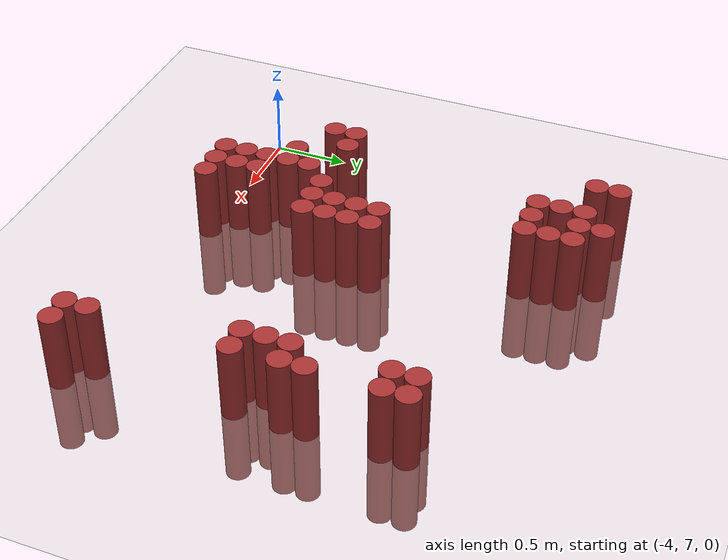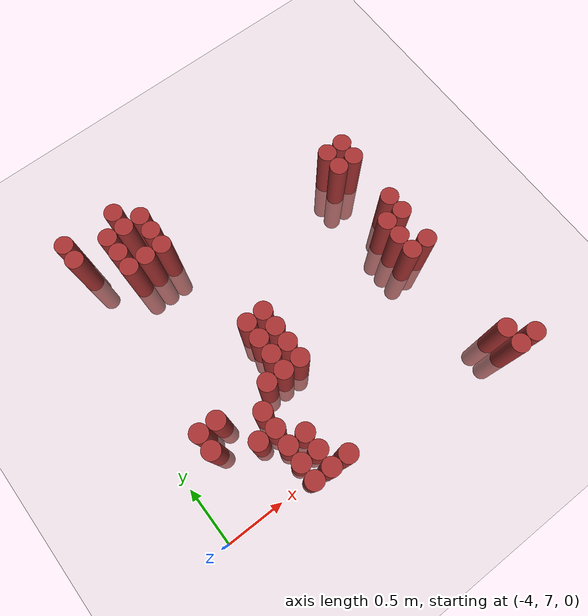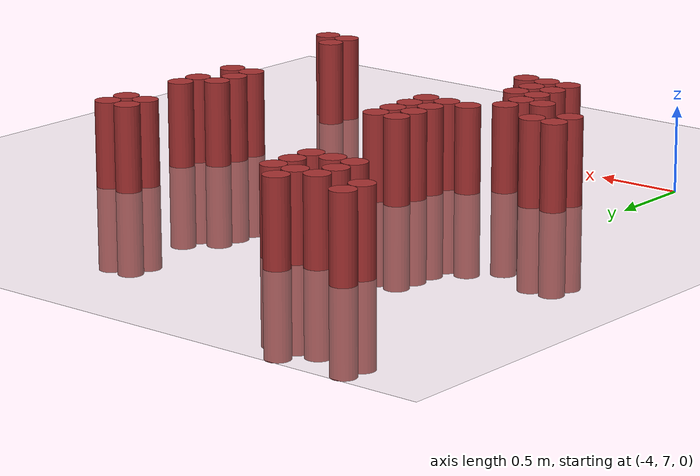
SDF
<sdf version="1.6">
 <world name="world_13">
  <model name="ground_plane">
   <static>1</static>
   <link name="link">
    <collision name="collision">
     <geometry><plane><normal>0 0 1</normal><size>100 100</size></plane></geometry>
     <surface><friction><ode><mu>100</mu><mu2>50</mu2></ode></friction></surface>
    </collision>
    <visual name="visual">
     <cast_shadows>0</cast_shadows>
     <geometry><plane><normal>0 0 1</normal><size>100 100</size></plane></geometry>
     <material>
      <script><uri>file://media/materials/scripts/gazebo.material</uri><name>Gazebo/Grey</name></script>
     </material>
    </visual>
   </link>
  </model>
  <model name="unit_cylinder_160">
   <static>1</static>
   <pose>-3.675000 7.575000 0.000000 0.000000 0.000000 0.000000</pose>
   <link name="link">
    <inertial>
     <mass>1</mass>
     <inertia><ixx>0.145833</ixx><ixy>0</ixy><ixz>0</ixz><iyy>0.145833</iyy><iyz>0</iyz><izz>0.125</izz></inertia>
    </inertial>
    <collision name="collision">
     <geometry><cylinder><radius>0.075000</radius><length>1</length></cylinder></geometry>
    </collision>
    <visual name="visual">
     <geometry><cylinder><radius>0.075000</radius><length>1</length></cylinder></geometry>
     <material>
      <ambient>0.648000 0.192000 0.192000 1</ambient>
      <diffuse>0.648000 0.192000 0.192000 1</diffuse>
     </material>
     <material>
      <script><name>Gazebo/Grey</name><uri>file://media/materials/scripts/gazebo.material</uri></script>
     </material>
    </visual>
   </link>
  </model>
  <model name="unit_cylinder_161">
   <static>1</static>
   <pose>-3.675000 7.725000 0.000000 0.000000 0.000000 0.000000</pose>
   <link name="link">
    <inertial>
     <mass>1</mass>
     <inertia><ixx>0.145833</ixx><ixy>0</ixy><ixz>0</ixz><iyy>0.145833</iyy><iyz>0</iyz><izz>0.125</izz></inertia>
    </inertial>
    <collision name="collision">
     <geometry><cylinder><radius>0.075000</radius><length>1</length></cylinder></geometry>
    </collision>
    <visual name="visual">
     <geometry><cylinder><radius>0.075000</radius><length>1</length></cylinder></geometry>
     <material>
      <ambient>0.648000 0.192000 0.192000 1</ambient>
      <diffuse>0.648000 0.192000 0.192000 1</diffuse>
     </material>
     <material>
      <script><name>Gazebo/Grey</name><uri>file://media/materials/scripts/gazebo.material</uri></script>
     </material>
    </visual>
   </link>
  </model>
  <model name="unit_cylinder_162">
   <static>1</static>
   <pose>-3.675000 9.375000 0.000000 0.000000 0.000000 0.000000</pose>
   <link name="link">
    <inertial>
     <mass>1</mass>
     <inertia><ixx>0.145833</ixx><ixy>0</ixy><ixz>0</ixz><iyy>0.145833</iyy><iyz>0</iyz><izz>0.125</izz></inertia>
    </inertial>
    <collision name="collision">
     <geometry><cylinder><radius>0.075000</radius><length>1</length></cylinder></geometry>
    </collision>
    <visual name="visual">
     <geometry><cylinder><radius>0.075000</radius><length>1</length></cylinder></geometry>
     <material>
      <ambient>0.648000 0.192000 0.192000 1</ambient>
      <diffuse>0.648000 0.192000 0.192000 1</diffuse>
     </material>
     <material>
      <script><name>Gazebo/Grey</name><uri>file://media/materials/scripts/gazebo.material</uri></script>
     </material>
    </visual>
   </link>
  </model>
  <model name="unit_cylinder_163">
   <static>1</static>
   <pose>-3.675000 9.525000 0.000000 0.000000 0.000000 0.000000</pose>
   <link name="link">
    <inertial>
     <mass>1</mass>
     <inertia><ixx>0.145833</ixx><ixy>0</ixy><ixz>0</ixz><iyy>0.145833</iyy><iyz>0</iyz><izz>0.125</izz></inertia>
    </inertial>
    <collision name="collision">
     <geometry><cylinder><radius>0.075000</radius><length>1</length></cylinder></geometry>
    </collision>
    <visual name="visual">
     <geometry><cylinder><radius>0.075000</radius><length>1</length></cylinder></geometry>
     <material>
      <ambient>0.648000 0.192000 0.192000 1</ambient>
      <diffuse>0.648000 0.192000 0.192000 1</diffuse>
     </material>
     <material>
      <script><name>Gazebo/Grey</name><uri>file://media/materials/scripts/gazebo.material</uri></script>
     </material>
    </visual>
   </link>
  </model>
  <model name="unit_cylinder_164">
   <static>1</static>
   <pose>-3.525000 7.725000 0.000000 0.000000 0.000000 0.000000</pose>
   <link name="link">
    <inertial>
     <mass>1</mass>
     <inertia><ixx>0.145833</ixx><ixy>0</ixy><ixz>0</ixz><iyy>0.145833</iyy><iyz>0</iyz><izz>0.125</izz></inertia>
    </inertial>
    <collision name="collision">
     <geometry><cylinder><radius>0.075000</radius><length>1</length></cylinder></geometry>
    </collision>
    <visual name="visual">
     <geometry><cylinder><radius>0.075000</radius><length>1</length></cylinder></geometry>
     <material>
      <ambient>0.648000 0.192000 0.192000 1</ambient>
      <diffuse>0.648000 0.192000 0.192000 1</diffuse>
     </material>
     <material>
      <script><name>Gazebo/Grey</name><uri>file://media/materials/scripts/gazebo.material</uri></script>
     </material>
    </visual>
   </link>
  </model>
  <model name="unit_cylinder_165">
   <static>1</static>
   <pose>-3.375000 7.425000 0.000000 0.000000 0.000000 0.000000</pose>
   <link name="link">
    <inertial>
     <mass>1</mass>
     <inertia><ixx>0.145833</ixx><ixy>0</ixy><ixz>0</ixz><iyy>0.145833</iyy><iyz>0</iyz><izz>0.125</izz></inertia>
    </inertial>
    <collision name="collision">
     <geometry><cylinder><radius>0.075000</radius><length>1</length></cylinder></geometry>
    </collision>
    <visual name="visual">
     <geometry><cylinder><radius>0.075000</radius><length>1</length></cylinder></geometry>
     <material>
      <ambient>0.648000 0.192000 0.192000 1</ambient>
      <diffuse>0.648000 0.192000 0.192000 1</diffuse>
     </material>
     <material>
      <script><name>Gazebo/Grey</name><uri>file://media/materials/scripts/gazebo.material</uri></script>
     </material>
    </visual>
   </link>
  </model>
  <model name="unit_cylinder_166">
   <static>1</static>
   <pose>-3.375000 9.075000 0.000000 0.000000 0.000000 0.000000</pose>
   <link name="link">
    <inertial>
     <mass>1</mass>
     <inertia><ixx>0.145833</ixx><ixy>0</ixy><ixz>0</ixz><iyy>0.145833</iyy><iyz>0</iyz><izz>0.125</izz></inertia>
    </inertial>
    <collision name="collision">
     <geometry><cylinder><radius>0.075000</radius><length>1</length></cylinder></geometry>
    </collision>
    <visual name="visual">
     <geometry><cylinder><radius>0.075000</radius><length>1</length></cylinder></geometry>
     <material>
      <ambient>0.648000 0.192000 0.192000 1</ambient>
      <diffuse>0.648000 0.192000 0.192000 1</diffuse>
     </material>
     <material>
      <script><name>Gazebo/Grey</name><uri>file://media/materials/scripts/gazebo.material</uri></script>
     </material>
    </visual>
   </link>
  </model>
  <model name="unit_cylinder_167">
   <static>1</static>
   <pose>-3.375000 9.225000 0.000000 0.000000 0.000000 0.000000</pose>
   <link name="link">
    <inertial>
     <mass>1</mass>
     <inertia><ixx>0.145833</ixx><ixy>0</ixy><ixz>0</ixz><iyy>0.145833</iyy><iyz>0</iyz><izz>0.125</izz></inertia>
    </inertial>
    <collision name="collision">
     <geometry><cylinder><radius>0.075000</radius><length>1</length></cylinder></geometry>
    </collision>
    <visual name="visual">
     <geometry><cylinder><radius>0.075000</radius><length>1</length></cylinder></geometry>
     <material>
      <ambient>0.648000 0.192000 0.192000 1</ambient>
      <diffuse>0.648000 0.192000 0.192000 1</diffuse>
     </material>
     <material>
      <script><name>Gazebo/Grey</name><uri>file://media/materials/scripts/gazebo.material</uri></script>
     </material>
    </visual>
   </link>
  </model>
  <model name="unit_cylinder_168">
   <static>1</static>
   <pose>-3.375000 9.375000 0.000000 0.000000 0.000000 0.000000</pose>
   <link name="link">
    <inertial>
     <mass>1</mass>
     <inertia><ixx>0.145833</ixx><ixy>0</ixy><ixz>0</ixz><iyy>0.145833</iyy><iyz>0</iyz><izz>0.125</izz></inertia>
    </inertial>
    <collision name="collision">
     <geometry><cylinder><radius>0.075000</radius><length>1</length></cylinder></geometry>
    </collision>
    <visual name="visual">
     <geometry><cylinder><radius>0.075000</radius><length>1</length></cylinder></geometry>
     <material>
      <ambient>0.648000 0.192000 0.192000 1</ambient>
      <diffuse>0.648000 0.192000 0.192000 1</diffuse>
     </material>
     <material>
      <script><name>Gazebo/Grey</name><uri>file://media/materials/scripts/gazebo.material</uri></script>
     </material>
    </visual>
   </link>
  </model>
  <model name="unit_cylinder_169">
   <static>1</static>
   <pose>-3.225000 6.975000 0.000000 0.000000 0.000000 0.000000</pose>
   <link name="link">
    <inertial>
     <mass>1</mass>
     <inertia><ixx>0.145833</ixx><ixy>0</ixy><ixz>0</ixz><iyy>0.145833</iyy><iyz>0</iyz><izz>0.125</izz></inertia>
    </inertial>
    <collision name="collision">
     <geometry><cylinder><radius>0.075000</radius><length>1</length></cylinder></geometry>
    </collision>
    <visual name="visual">
     <geometry><cylinder><radius>0.075000</radius><length>1</length></cylinder></geometry>
     <material>
      <ambient>0.648000 0.192000 0.192000 1</ambient>
      <diffuse>0.648000 0.192000 0.192000 1</diffuse>
     </material>
     <material>
      <script><name>Gazebo/Grey</name><uri>file://media/materials/scripts/gazebo.material</uri></script>
     </material>
    </visual>
   </link>
  </model>
  <model name="unit_cylinder_170">
   <static>1</static>
   <pose>-3.225000 7.125000 0.000000 0.000000 0.000000 0.000000</pose>
   <link name="link">
    <inertial>
     <mass>1</mass>
     <inertia><ixx>0.145833</ixx><ixy>0</ixy><ixz>0</ixz><iyy>0.145833</iyy><iyz>0</iyz><izz>0.125</izz></inertia>
    </inertial>
    <collision name="collision">
     <geometry><cylinder><radius>0.075000</radius><length>1</length></cylinder></geometry>
    </collision>
    <visual name="visual">
     <geometry><cylinder><radius>0.075000</radius><length>1</length></cylinder></geometry>
     <material>
      <ambient>0.648000 0.192000 0.192000 1</ambient>
      <diffuse>0.648000 0.192000 0.192000 1</diffuse>
     </material>
     <material>
      <script><name>Gazebo/Grey</name><uri>file://media/materials/scripts/gazebo.material</uri></script>
     </material>
    </visual>
   </link>
  </model>
  <model name="unit_cylinder_171">
   <static>1</static>
   <pose>-3.225000 7.275000 0.000000 0.000000 0.000000 0.000000</pose>
   <link name="link">
    <inertial>
     <mass>1</mass>
     <inertia><ixx>0.145833</ixx><ixy>0</ixy><ixz>0</ixz><iyy>0.145833</iyy><iyz>0</iyz><izz>0.125</izz></inertia>
    </inertial>
    <collision name="collision">
     <geometry><cylinder><radius>0.075000</radius><length>1</length></cylinder></geometry>
    </collision>
    <visual name="visual">
     <geometry><cylinder><radius>0.075000</radius><length>1</length></cylinder></geometry>
     <material>
      <ambient>0.648000 0.192000 0.192000 1</ambient>
      <diffuse>0.648000 0.192000 0.192000 1</diffuse>
     </material>
     <material>
      <script><name>Gazebo/Grey</name><uri>file://media/materials/scripts/gazebo.material</uri></script>
     </material>
    </visual>
   </link>
  </model>
  <model name="unit_cylinder_172">
   <static>1</static>
   <pose>-3.225000 7.425000 0.000000 0.000000 0.000000 0.000000</pose>
   <link name="link">
    <inertial>
     <mass>1</mass>
     <inertia><ixx>0.145833</ixx><ixy>0</ixy><ixz>0</ixz><iyy>0.145833</iyy><iyz>0</iyz><izz>0.125</izz></inertia>
    </inertial>
    <collision name="collision">
     <geometry><cylinder><radius>0.075000</radius><length>1</length></cylinder></geometry>
    </collision>
    <visual name="visual">
     <geometry><cylinder><radius>0.075000</radius><length>1</length></cylinder></geometry>
     <material>
      <ambient>0.648000 0.192000 0.192000 1</ambient>
      <diffuse>0.648000 0.192000 0.192000 1</diffuse>
     </material>
     <material>
      <script><name>Gazebo/Grey</name><uri>file://media/materials/scripts/gazebo.material</uri></script>
     </material>
    </visual>
   </link>
  </model>
  <model name="unit_cylinder_173">
   <static>1</static>
   <pose>-3.225000 7.575000 0.000000 0.000000 0.000000 0.000000</pose>
   <link name="link">
    <inertial>
     <mass>1</mass>
     <inertia><ixx>0.145833</ixx><ixy>0</ixy><ixz>0</ixz><iyy>0.145833</iyy><iyz>0</iyz><izz>0.125</izz></inertia>
    </inertial>
    <collision name="collision">
     <geometry><cylinder><radius>0.075000</radius><length>1</length></cylinder></geometry>
    </collision>
    <visual name="visual">
     <geometry><cylinder><radius>0.075000</radius><length>1</length></cylinder></geometry>
     <material>
      <ambient>0.648000 0.192000 0.192000 1</ambient>
      <diffuse>0.648000 0.192000 0.192000 1</diffuse>
     </material>
     <material>
      <script><name>Gazebo/Grey</name><uri>file://media/materials/scripts/gazebo.material</uri></script>
     </material>
    </visual>
   </link>
  </model>
  <model name="unit_cylinder_174">
   <static>1</static>
   <pose>-3.225000 9.075000 0.000000 0.000000 0.000000 0.000000</pose>
   <link name="link">
    <inertial>
     <mass>1</mass>
     <inertia><ixx>0.145833</ixx><ixy>0</ixy><ixz>0</ixz><iyy>0.145833</iyy><iyz>0</iyz><izz>0.125</izz></inertia>
    </inertial>
    <collision name="collision">
     <geometry><cylinder><radius>0.075000</radius><length>1</length></cylinder></geometry>
    </collision>
    <visual name="visual">
     <geometry><cylinder><radius>0.075000</radius><length>1</length></cylinder></geometry>
     <material>
      <ambient>0.648000 0.192000 0.192000 1</ambient>
      <diffuse>0.648000 0.192000 0.192000 1</diffuse>
     </material>
     <material>
      <script><name>Gazebo/Grey</name><uri>file://media/materials/scripts/gazebo.material</uri></script>
     </material>
    </visual>
   </link>
  </model>
  <model name="unit_cylinder_175">
   <static>1</static>
   <pose>-3.225000 9.375000 0.000000 0.000000 0.000000 0.000000</pose>
   <link name="link">
    <inertial>
     <mass>1</mass>
     <inertia><ixx>0.145833</ixx><ixy>0</ixy><ixz>0</ixz><iyy>0.145833</iyy><iyz>0</iyz><izz>0.125</izz></inertia>
    </inertial>
    <collision name="collision">
     <geometry><cylinder><radius>0.075000</radius><length>1</length></cylinder></geometry>
    </collision>
    <visual name="visual">
     <geometry><cylinder><radius>0.075000</radius><length>1</length></cylinder></geometry>
     <material>
      <ambient>0.648000 0.192000 0.192000 1</ambient>
      <diffuse>0.648000 0.192000 0.192000 1</diffuse>
     </material>
     <material>
      <script><name>Gazebo/Grey</name><uri>file://media/materials/scripts/gazebo.material</uri></script>
     </material>
    </visual>
   </link>
  </model>
  <model name="unit_cylinder_176">
   <static>1</static>
   <pose>-3.225000 9.525000 0.000000 0.000000 0.000000 0.000000</pose>
   <link name="link">
    <inertial>
     <mass>1</mass>
     <inertia><ixx>0.145833</ixx><ixy>0</ixy><ixz>0</ixz><iyy>0.145833</iyy><iyz>0</iyz><izz>0.125</izz></inertia>
    </inertial>
    <collision name="collision">
     <geometry><cylinder><radius>0.075000</radius><length>1</length></cylinder></geometry>
    </collision>
    <visual name="visual">
     <geometry><cylinder><radius>0.075000</radius><length>1</length></cylinder></geometry>
     <material>
      <ambient>0.648000 0.192000 0.192000 1</ambient>
      <diffuse>0.648000 0.192000 0.192000 1</diffuse>
     </material>
     <material>
      <script><name>Gazebo/Grey</name><uri>file://media/materials/scripts/gazebo.material</uri></script>
     </material>
    </visual>
   </link>
  </model>
  <model name="unit_cylinder_179">
   <static>1</static>
   <pose>-3.075000 6.975000 0.000000 0.000000 0.000000 0.000000</pose>
   <link name="link">
    <inertial>
     <mass>1</mass>
     <inertia><ixx>0.145833</ixx><ixy>0</ixy><ixz>0</ixz><iyy>0.145833</iyy><iyz>0</iyz><izz>0.125</izz></inertia>
    </inertial>
    <collision name="collision">
     <geometry><cylinder><radius>0.075000</radius><length>1</length></cylinder></geometry>
    </collision>
    <visual name="visual">
     <geometry><cylinder><radius>0.075000</radius><length>1</length></cylinder></geometry>
     <material>
      <ambient>0.648000 0.192000 0.192000 1</ambient>
      <diffuse>0.648000 0.192000 0.192000 1</diffuse>
     </material>
     <material>
      <script><name>Gazebo/Grey</name><uri>file://media/materials/scripts/gazebo.material</uri></script>
     </material>
    </visual>
   </link>
  </model>
  <model name="unit_cylinder_180">
   <static>1</static>
   <pose>-3.075000 7.125000 0.000000 0.000000 0.000000 0.000000</pose>
   <link name="link">
    <inertial>
     <mass>1</mass>
     <inertia><ixx>0.145833</ixx><ixy>0</ixy><ixz>0</ixz><iyy>0.145833</iyy><iyz>0</iyz><izz>0.125</izz></inertia>
    </inertial>
    <collision name="collision">
     <geometry><cylinder><radius>0.075000</radius><length>1</length></cylinder></geometry>
    </collision>
    <visual name="visual">
     <geometry><cylinder><radius>0.075000</radius><length>1</length></cylinder></geometry>
     <material>
      <ambient>0.648000 0.192000 0.192000 1</ambient>
      <diffuse>0.648000 0.192000 0.192000 1</diffuse>
     </material>
     <material>
      <script><name>Gazebo/Grey</name><uri>file://media/materials/scripts/gazebo.material</uri></script>
     </material>
    </visual>
   </link>
  </model>
  <model name="unit_cylinder_181">
   <static>1</static>
   <pose>-3.075000 7.275000 0.000000 0.000000 0.000000 0.000000</pose>
   <link name="link">
    <inertial>
     <mass>1</mass>
     <inertia><ixx>0.145833</ixx><ixy>0</ixy><ixz>0</ixz><iyy>0.145833</iyy><iyz>0</iyz><izz>0.125</izz></inertia>
    </inertial>
    <collision name="collision">
     <geometry><cylinder><radius>0.075000</radius><length>1</length></cylinder></geometry>
    </collision>
    <visual name="visual">
     <geometry><cylinder><radius>0.075000</radius><length>1</length></cylinder></geometry>
     <material>
      <ambient>0.648000 0.192000 0.192000 1</ambient>
      <diffuse>0.648000 0.192000 0.192000 1</diffuse>
     </material>
     <material>
      <script><name>Gazebo/Grey</name><uri>file://media/materials/scripts/gazebo.material</uri></script>
     </material>
    </visual>
   </link>
  </model>
  <model name="unit_cylinder_182">
   <static>1</static>
   <pose>-3.075000 7.725000 0.000000 0.000000 0.000000 0.000000</pose>
   <link name="link">
    <inertial>
     <mass>1</mass>
     <inertia><ixx>0.145833</ixx><ixy>0</ixy><ixz>0</ixz><iyy>0.145833</iyy><iyz>0</iyz><izz>0.125</izz></inertia>
    </inertial>
    <collision name="collision">
     <geometry><cylinder><radius>0.075000</radius><length>1</length></cylinder></geometry>
    </collision>
    <visual name="visual">
     <geometry><cylinder><radius>0.075000</radius><length>1</length></cylinder></geometry>
     <material>
      <ambient>0.648000 0.192000 0.192000 1</ambient>
      <diffuse>0.648000 0.192000 0.192000 1</diffuse>
     </material>
     <material>
      <script><name>Gazebo/Grey</name><uri>file://media/materials/scripts/gazebo.material</uri></script>
     </material>
    </visual>
   </link>
  </model>
  <model name="unit_cylinder_183">
   <static>1</static>
   <pose>-3.075000 9.075000 0.000000 0.000000 0.000000 0.000000</pose>
   <link name="link">
    <inertial>
     <mass>1</mass>
     <inertia><ixx>0.145833</ixx><ixy>0</ixy><ixz>0</ixz><iyy>0.145833</iyy><iyz>0</iyz><izz>0.125</izz></inertia>
    </inertial>
    <collision name="collision">
     <geometry><cylinder><radius>0.075000</radius><length>1</length></cylinder></geometry>
    </collision>
    <visual name="visual">
     <geometry><cylinder><radius>0.075000</radius><length>1</length></cylinder></geometry>
     <material>
      <ambient>0.648000 0.192000 0.192000 1</ambient>
      <diffuse>0.648000 0.192000 0.192000 1</diffuse>
     </material>
     <material>
      <script><name>Gazebo/Grey</name><uri>file://media/materials/scripts/gazebo.material</uri></script>
     </material>
    </visual>
   </link>
  </model>
  <model name="unit_cylinder_184">
   <static>1</static>
   <pose>-3.075000 9.225000 0.000000 0.000000 0.000000 0.000000</pose>
   <link name="link">
    <inertial>
     <mass>1</mass>
     <inertia><ixx>0.145833</ixx><ixy>0</ixy><ixz>0</ixz><iyy>0.145833</iyy><iyz>0</iyz><izz>0.125</izz></inertia>
    </inertial>
    <collision name="collision">
     <geometry><cylinder><radius>0.075000</radius><length>1</length></cylinder></geometry>
    </collision>
    <visual name="visual">
     <geometry><cylinder><radius>0.075000</radius><length>1</length></cylinder></geometry>
     <material>
      <ambient>0.648000 0.192000 0.192000 1</ambient>
      <diffuse>0.648000 0.192000 0.192000 1</diffuse>
     </material>
     <material>
      <script><name>Gazebo/Grey</name><uri>file://media/materials/scripts/gazebo.material</uri></script>
     </material>
    </visual>
   </link>
  </model>
  <model name="unit_cylinder_185">
   <static>1</static>
   <pose>-3.075000 9.375000 0.000000 0.000000 0.000000 0.000000</pose>
   <link name="link">
    <inertial>
     <mass>1</mass>
     <inertia><ixx>0.145833</ixx><ixy>0</ixy><ixz>0</ixz><iyy>0.145833</iyy><iyz>0</iyz><izz>0.125</izz></inertia>
    </inertial>
    <collision name="collision">
     <geometry><cylinder><radius>0.075000</radius><length>1</length></cylinder></geometry>
    </collision>
    <visual name="visual">
     <geometry><cylinder><radius>0.075000</radius><length>1</length></cylinder></geometry>
     <material>
      <ambient>0.648000 0.192000 0.192000 1</ambient>
      <diffuse>0.648000 0.192000 0.192000 1</diffuse>
     </material>
     <material>
      <script><name>Gazebo/Grey</name><uri>file://media/materials/scripts/gazebo.material</uri></script>
     </material>
    </visual>
   </link>
  </model>
  <model name="unit_cylinder_188">
   <static>1</static>
   <pose>-2.925000 6.975000 0.000000 0.000000 0.000000 0.000000</pose>
   <link name="link">
    <inertial>
     <mass>1</mass>
     <inertia><ixx>0.145833</ixx><ixy>0</ixy><ixz>0</ixz><iyy>0.145833</iyy><iyz>0</iyz><izz>0.125</izz></inertia>
    </inertial>
    <collision name="collision">
     <geometry><cylinder><radius>0.075000</radius><length>1</length></cylinder></geometry>
    </collision>
    <visual name="visual">
     <geometry><cylinder><radius>0.075000</radius><length>1</length></cylinder></geometry>
     <material>
      <ambient>0.648000 0.192000 0.192000 1</ambient>
      <diffuse>0.648000 0.192000 0.192000 1</diffuse>
     </material>
     <material>
      <script><name>Gazebo/Grey</name><uri>file://media/materials/scripts/gazebo.material</uri></script>
     </material>
    </visual>
   </link>
  </model>
  <model name="unit_cylinder_189">
   <static>1</static>
   <pose>-2.925000 7.725000 0.000000 0.000000 0.000000 0.000000</pose>
   <link name="link">
    <inertial>
     <mass>1</mass>
     <inertia><ixx>0.145833</ixx><ixy>0</ixy><ixz>0</ixz><iyy>0.145833</iyy><iyz>0</iyz><izz>0.125</izz></inertia>
    </inertial>
    <collision name="collision">
     <geometry><cylinder><radius>0.075000</radius><length>1</length></cylinder></geometry>
    </collision>
    <visual name="visual">
     <geometry><cylinder><radius>0.075000</radius><length>1</length></cylinder></geometry>
     <material>
      <ambient>0.648000 0.192000 0.192000 1</ambient>
      <diffuse>0.648000 0.192000 0.192000 1</diffuse>
     </material>
     <material>
      <script><name>Gazebo/Grey</name><uri>file://media/materials/scripts/gazebo.material</uri></script>
     </material>
    </visual>
   </link>
  </model>
  <model name="unit_cylinder_190">
   <static>1</static>
   <pose>-2.925000 7.875000 0.000000 0.000000 0.000000 0.000000</pose>
   <link name="link">
    <inertial>
     <mass>1</mass>
     <inertia><ixx>0.145833</ixx><ixy>0</ixy><ixz>0</ixz><iyy>0.145833</iyy><iyz>0</iyz><izz>0.125</izz></inertia>
    </inertial>
    <collision name="collision">
     <geometry><cylinder><radius>0.075000</radius><length>1</length></cylinder></geometry>
    </collision>
    <visual name="visual">
     <geometry><cylinder><radius>0.075000</radius><length>1</length></cylinder></geometry>
     <material>
      <ambient>0.648000 0.192000 0.192000 1</ambient>
      <diffuse>0.648000 0.192000 0.192000 1</diffuse>
     </material>
     <material>
      <script><name>Gazebo/Grey</name><uri>file://media/materials/scripts/gazebo.material</uri></script>
     </material>
    </visual>
   </link>
  </model>
  <model name="unit_cylinder_191">
   <static>1</static>
   <pose>-2.925000 8.025000 0.000000 0.000000 0.000000 0.000000</pose>
   <link name="link">
    <inertial>
     <mass>1</mass>
     <inertia><ixx>0.145833</ixx><ixy>0</ixy><ixz>0</ixz><iyy>0.145833</iyy><iyz>0</iyz><izz>0.125</izz></inertia>
    </inertial>
    <collision name="collision">
     <geometry><cylinder><radius>0.075000</radius><length>1</length></cylinder></geometry>
    </collision>
    <visual name="visual">
     <geometry><cylinder><radius>0.075000</radius><length>1</length></cylinder></geometry>
     <material>
      <ambient>0.648000 0.192000 0.192000 1</ambient>
      <diffuse>0.648000 0.192000 0.192000 1</diffuse>
     </material>
     <material>
      <script><name>Gazebo/Grey</name><uri>file://media/materials/scripts/gazebo.material</uri></script>
     </material>
    </visual>
   </link>
  </model>
  <model name="unit_cylinder_192">
   <static>1</static>
   <pose>-2.925000 8.175000 0.000000 0.000000 0.000000 0.000000</pose>
   <link name="link">
    <inertial>
     <mass>1</mass>
     <inertia><ixx>0.145833</ixx><ixy>0</ixy><ixz>0</ixz><iyy>0.145833</iyy><iyz>0</iyz><izz>0.125</izz></inertia>
    </inertial>
    <collision name="collision">
     <geometry><cylinder><radius>0.075000</radius><length>1</length></cylinder></geometry>
    </collision>
    <visual name="visual">
     <geometry><cylinder><radius>0.075000</radius><length>1</length></cylinder></geometry>
     <material>
      <ambient>0.648000 0.192000 0.192000 1</ambient>
      <diffuse>0.648000 0.192000 0.192000 1</diffuse>
     </material>
     <material>
      <script><name>Gazebo/Grey</name><uri>file://media/materials/scripts/gazebo.material</uri></script>
     </material>
    </visual>
   </link>
  </model>
  <model name="unit_cylinder_195">
   <static>1</static>
   <pose>-2.775000 7.725000 0.000000 0.000000 0.000000 0.000000</pose>
   <link name="link">
    <inertial>
     <mass>1</mass>
     <inertia><ixx>0.145833</ixx><ixy>0</ixy><ixz>0</ixz><iyy>0.145833</iyy><iyz>0</iyz><izz>0.125</izz></inertia>
    </inertial>
    <collision name="collision">
     <geometry><cylinder><radius>0.075000</radius><length>1</length></cylinder></geometry>
    </collision>
    <visual name="visual">
     <geometry><cylinder><radius>0.075000</radius><length>1</length></cylinder></geometry>
     <material>
      <ambient>0.648000 0.192000 0.192000 1</ambient>
      <diffuse>0.648000 0.192000 0.192000 1</diffuse>
     </material>
     <material>
      <script><name>Gazebo/Grey</name><uri>file://media/materials/scripts/gazebo.material</uri></script>
     </material>
    </visual>
   </link>
  </model>
  <model name="unit_cylinder_196">
   <static>1</static>
   <pose>-2.775000 7.875000 0.000000 0.000000 0.000000 0.000000</pose>
   <link name="link">
    <inertial>
     <mass>1</mass>
     <inertia><ixx>0.145833</ixx><ixy>0</ixy><ixz>0</ixz><iyy>0.145833</iyy><iyz>0</iyz><izz>0.125</izz></inertia>
    </inertial>
    <collision name="collision">
     <geometry><cylinder><radius>0.075000</radius><length>1</length></cylinder></geometry>
    </collision>
    <visual name="visual">
     <geometry><cylinder><radius>0.075000</radius><length>1</length></cylinder></geometry>
     <material>
      <ambient>0.648000 0.192000 0.192000 1</ambient>
      <diffuse>0.648000 0.192000 0.192000 1</diffuse>
     </material>
     <material>
      <script><name>Gazebo/Grey</name><uri>file://media/materials/scripts/gazebo.material</uri></script>
     </material>
    </visual>
   </link>
  </model>
  <model name="unit_cylinder_197">
   <static>1</static>
   <pose>-2.775000 8.025000 0.000000 0.000000 0.000000 0.000000</pose>
   <link name="link">
    <inertial>
     <mass>1</mass>
     <inertia><ixx>0.145833</ixx><ixy>0</ixy><ixz>0</ixz><iyy>0.145833</iyy><iyz>0</iyz><izz>0.125</izz></inertia>
    </inertial>
    <collision name="collision">
     <geometry><cylinder><radius>0.075000</radius><length>1</length></cylinder></geometry>
    </collision>
    <visual name="visual">
     <geometry><cylinder><radius>0.075000</radius><length>1</length></cylinder></geometry>
     <material>
      <ambient>0.648000 0.192000 0.192000 1</ambient>
      <diffuse>0.648000 0.192000 0.192000 1</diffuse>
     </material>
     <material>
      <script><name>Gazebo/Grey</name><uri>file://media/materials/scripts/gazebo.material</uri></script>
     </material>
    </visual>
   </link>
  </model>
  <model name="unit_cylinder_198">
   <static>1</static>
   <pose>-2.775000 8.175000 0.000000 0.000000 0.000000 0.000000</pose>
   <link name="link">
    <inertial>
     <mass>1</mass>
     <inertia><ixx>0.145833</ixx><ixy>0</ixy><ixz>0</ixz><iyy>0.145833</iyy><iyz>0</iyz><izz>0.125</izz></inertia>
    </inertial>
    <collision name="collision">
     <geometry><cylinder><radius>0.075000</radius><length>1</length></cylinder></geometry>
    </collision>
    <visual name="visual">
     <geometry><cylinder><radius>0.075000</radius><length>1</length></cylinder></geometry>
     <material>
      <ambient>0.648000 0.192000 0.192000 1</ambient>
      <diffuse>0.648000 0.192000 0.192000 1</diffuse>
     </material>
     <material>
      <script><name>Gazebo/Grey</name><uri>file://media/materials/scripts/gazebo.material</uri></script>
     </material>
    </visual>
   </link>
  </model>
  <model name="unit_cylinder_205">
   <static>1</static>
   <pose>-1.575000 7.875000 0.000000 0.000000 0.000000 0.000000</pose>
   <link name="link">
    <inertial>
     <mass>1</mass>
     <inertia><ixx>0.145833</ixx><ixy>0</ixy><ixz>0</ixz><iyy>0.145833</iyy><iyz>0</iyz><izz>0.125</izz></inertia>
    </inertial>
    <collision name="collision">
     <geometry><cylinder><radius>0.075000</radius><length>1</length></cylinder></geometry>
    </collision>
    <visual name="visual">
     <geometry><cylinder><radius>0.075000</radius><length>1</length></cylinder></geometry>
     <material>
      <ambient>0.648000 0.192000 0.192000 1</ambient>
      <diffuse>0.648000 0.192000 0.192000 1</diffuse>
     </material>
     <material>
      <script><name>Gazebo/Grey</name><uri>file://media/materials/scripts/gazebo.material</uri></script>
     </material>
    </visual>
   </link>
  </model>
  <model name="unit_cylinder_206">
   <static>1</static>
   <pose>-1.575000 8.025000 0.000000 0.000000 0.000000 0.000000</pose>
   <link name="link">
    <inertial>
     <mass>1</mass>
     <inertia><ixx>0.145833</ixx><ixy>0</ixy><ixz>0</ixz><iyy>0.145833</iyy><iyz>0</iyz><izz>0.125</izz></inertia>
    </inertial>
    <collision name="collision">
     <geometry><cylinder><radius>0.075000</radius><length>1</length></cylinder></geometry>
    </collision>
    <visual name="visual">
     <geometry><cylinder><radius>0.075000</radius><length>1</length></cylinder></geometry>
     <material>
      <ambient>0.648000 0.192000 0.192000 1</ambient>
      <diffuse>0.648000 0.192000 0.192000 1</diffuse>
     </material>
     <material>
      <script><name>Gazebo/Grey</name><uri>file://media/materials/scripts/gazebo.material</uri></script>
     </material>
    </visual>
   </link>
  </model>
  <model name="unit_cylinder_207">
   <static>1</static>
   <pose>-1.575000 8.175000 0.000000 0.000000 0.000000 0.000000</pose>
   <link name="link">
    <inertial>
     <mass>1</mass>
     <inertia><ixx>0.145833</ixx><ixy>0</ixy><ixz>0</ixz><iyy>0.145833</iyy><iyz>0</iyz><izz>0.125</izz></inertia>
    </inertial>
    <collision name="collision">
     <geometry><cylinder><radius>0.075000</radius><length>1</length></cylinder></geometry>
    </collision>
    <visual name="visual">
     <geometry><cylinder><radius>0.075000</radius><length>1</length></cylinder></geometry>
     <material>
      <ambient>0.648000 0.192000 0.192000 1</ambient>
      <diffuse>0.648000 0.192000 0.192000 1</diffuse>
     </material>
     <material>
      <script><name>Gazebo/Grey</name><uri>file://media/materials/scripts/gazebo.material</uri></script>
     </material>
    </visual>
   </link>
  </model>
  <model name="unit_cylinder_208">
   <static>1</static>
   <pose>-1.575000 8.775000 0.000000 0.000000 0.000000 0.000000</pose>
   <link name="link">
    <inertial>
     <mass>1</mass>
     <inertia><ixx>0.145833</ixx><ixy>0</ixy><ixz>0</ixz><iyy>0.145833</iyy><iyz>0</iyz><izz>0.125</izz></inertia>
    </inertial>
    <collision name="collision">
     <geometry><cylinder><radius>0.075000</radius><length>1</length></cylinder></geometry>
    </collision>
    <visual name="visual">
     <geometry><cylinder><radius>0.075000</radius><length>1</length></cylinder></geometry>
     <material>
      <ambient>0.648000 0.192000 0.192000 1</ambient>
      <diffuse>0.648000 0.192000 0.192000 1</diffuse>
     </material>
     <material>
      <script><name>Gazebo/Grey</name><uri>file://media/materials/scripts/gazebo.material</uri></script>
     </material>
    </visual>
   </link>
  </model>
  <model name="unit_cylinder_209">
   <static>1</static>
   <pose>-1.575000 8.925000 0.000000 0.000000 0.000000 0.000000</pose>
   <link name="link">
    <inertial>
     <mass>1</mass>
     <inertia><ixx>0.145833</ixx><ixy>0</ixy><ixz>0</ixz><iyy>0.145833</iyy><iyz>0</iyz><izz>0.125</izz></inertia>
    </inertial>
    <collision name="collision">
     <geometry><cylinder><radius>0.075000</radius><length>1</length></cylinder></geometry>
    </collision>
    <visual name="visual">
     <geometry><cylinder><radius>0.075000</radius><length>1</length></cylinder></geometry>
     <material>
      <ambient>0.648000 0.192000 0.192000 1</ambient>
      <diffuse>0.648000 0.192000 0.192000 1</diffuse>
     </material>
     <material>
      <script><name>Gazebo/Grey</name><uri>file://media/materials/scripts/gazebo.material</uri></script>
     </material>
    </visual>
   </link>
  </model>
  <model name="unit_cylinder_211">
   <static>1</static>
   <pose>-1.425000 6.825000 0.000000 0.000000 0.000000 0.000000</pose>
   <link name="link">
    <inertial>
     <mass>1</mass>
     <inertia><ixx>0.145833</ixx><ixy>0</ixy><ixz>0</ixz><iyy>0.145833</iyy><iyz>0</iyz><izz>0.125</izz></inertia>
    </inertial>
    <collision name="collision">
     <geometry><cylinder><radius>0.075000</radius><length>1</length></cylinder></geometry>
    </collision>
    <visual name="visual">
     <geometry><cylinder><radius>0.075000</radius><length>1</length></cylinder></geometry>
     <material>
      <ambient>0.648000 0.192000 0.192000 1</ambient>
      <diffuse>0.648000 0.192000 0.192000 1</diffuse>
     </material>
     <material>
      <script><name>Gazebo/Grey</name><uri>file://media/materials/scripts/gazebo.material</uri></script>
     </material>
    </visual>
   </link>
  </model>
  <model name="unit_cylinder_212">
   <static>1</static>
   <pose>-1.425000 6.975000 0.000000 0.000000 0.000000 0.000000</pose>
   <link name="link">
    <inertial>
     <mass>1</mass>
     <inertia><ixx>0.145833</ixx><ixy>0</ixy><ixz>0</ixz><iyy>0.145833</iyy><iyz>0</iyz><izz>0.125</izz></inertia>
    </inertial>
    <collision name="collision">
     <geometry><cylinder><radius>0.075000</radius><length>1</length></cylinder></geometry>
    </collision>
    <visual name="visual">
     <geometry><cylinder><radius>0.075000</radius><length>1</length></cylinder></geometry>
     <material>
      <ambient>0.648000 0.192000 0.192000 1</ambient>
      <diffuse>0.648000 0.192000 0.192000 1</diffuse>
     </material>
     <material>
      <script><name>Gazebo/Grey</name><uri>file://media/materials/scripts/gazebo.material</uri></script>
     </material>
    </visual>
   </link>
  </model>
  <model name="unit_cylinder_213">
   <static>1</static>
   <pose>-1.425000 7.875000 0.000000 0.000000 0.000000 0.000000</pose>
   <link name="link">
    <inertial>
     <mass>1</mass>
     <inertia><ixx>0.145833</ixx><ixy>0</ixy><ixz>0</ixz><iyy>0.145833</iyy><iyz>0</iyz><izz>0.125</izz></inertia>
    </inertial>
    <collision name="collision">
     <geometry><cylinder><radius>0.075000</radius><length>1</length></cylinder></geometry>
    </collision>
    <visual name="visual">
     <geometry><cylinder><radius>0.075000</radius><length>1</length></cylinder></geometry>
     <material>
      <ambient>0.648000 0.192000 0.192000 1</ambient>
      <diffuse>0.648000 0.192000 0.192000 1</diffuse>
     </material>
     <material>
      <script><name>Gazebo/Grey</name><uri>file://media/materials/scripts/gazebo.material</uri></script>
     </material>
    </visual>
   </link>
  </model>
  <model name="unit_cylinder_214">
   <static>1</static>
   <pose>-1.425000 8.175000 0.000000 0.000000 0.000000 0.000000</pose>
   <link name="link">
    <inertial>
     <mass>1</mass>
     <inertia><ixx>0.145833</ixx><ixy>0</ixy><ixz>0</ixz><iyy>0.145833</iyy><iyz>0</iyz><izz>0.125</izz></inertia>
    </inertial>
    <collision name="collision">
     <geometry><cylinder><radius>0.075000</radius><length>1</length></cylinder></geometry>
    </collision>
    <visual name="visual">
     <geometry><cylinder><radius>0.075000</radius><length>1</length></cylinder></geometry>
     <material>
      <ambient>0.648000 0.192000 0.192000 1</ambient>
      <diffuse>0.648000 0.192000 0.192000 1</diffuse>
     </material>
     <material>
      <script><name>Gazebo/Grey</name><uri>file://media/materials/scripts/gazebo.material</uri></script>
     </material>
    </visual>
   </link>
  </model>
  <model name="unit_cylinder_215">
   <static>1</static>
   <pose>-1.425000 8.325000 0.000000 0.000000 0.000000 0.000000</pose>
   <link name="link">
    <inertial>
     <mass>1</mass>
     <inertia><ixx>0.145833</ixx><ixy>0</ixy><ixz>0</ixz><iyy>0.145833</iyy><iyz>0</iyz><izz>0.125</izz></inertia>
    </inertial>
    <collision name="collision">
     <geometry><cylinder><radius>0.075000</radius><length>1</length></cylinder></geometry>
    </collision>
    <visual name="visual">
     <geometry><cylinder><radius>0.075000</radius><length>1</length></cylinder></geometry>
     <material>
      <ambient>0.648000 0.192000 0.192000 1</ambient>
      <diffuse>0.648000 0.192000 0.192000 1</diffuse>
     </material>
     <material>
      <script><name>Gazebo/Grey</name><uri>file://media/materials/scripts/gazebo.material</uri></script>
     </material>
    </visual>
   </link>
  </model>
  <model name="unit_cylinder_216">
   <static>1</static>
   <pose>-1.425000 8.775000 0.000000 0.000000 0.000000 0.000000</pose>
   <link name="link">
    <inertial>
     <mass>1</mass>
     <inertia><ixx>0.145833</ixx><ixy>0</ixy><ixz>0</ixz><iyy>0.145833</iyy><iyz>0</iyz><izz>0.125</izz></inertia>
    </inertial>
    <collision name="collision">
     <geometry><cylinder><radius>0.075000</radius><length>1</length></cylinder></geometry>
    </collision>
    <visual name="visual">
     <geometry><cylinder><radius>0.075000</radius><length>1</length></cylinder></geometry>
     <material>
      <ambient>0.648000 0.192000 0.192000 1</ambient>
      <diffuse>0.648000 0.192000 0.192000 1</diffuse>
     </material>
     <material>
      <script><name>Gazebo/Grey</name><uri>file://media/materials/scripts/gazebo.material</uri></script>
     </material>
    </visual>
   </link>
  </model>
  <model name="unit_cylinder_217">
   <static>1</static>
   <pose>-1.425000 8.925000 0.000000 0.000000 0.000000 0.000000</pose>
   <link name="link">
    <inertial>
     <mass>1</mass>
     <inertia><ixx>0.145833</ixx><ixy>0</ixy><ixz>0</ixz><iyy>0.145833</iyy><iyz>0</iyz><izz>0.125</izz></inertia>
    </inertial>
    <collision name="collision">
     <geometry><cylinder><radius>0.075000</radius><length>1</length></cylinder></geometry>
    </collision>
    <visual name="visual">
     <geometry><cylinder><radius>0.075000</radius><length>1</length></cylinder></geometry>
     <material>
      <ambient>0.648000 0.192000 0.192000 1</ambient>
      <diffuse>0.648000 0.192000 0.192000 1</diffuse>
     </material>
     <material>
      <script><name>Gazebo/Grey</name><uri>file://media/materials/scripts/gazebo.material</uri></script>
     </material>
    </visual>
   </link>
  </model>
  <model name="unit_cylinder_218">
   <static>1</static>
   <pose>-1.275000 6.825000 0.000000 0.000000 0.000000 0.000000</pose>
   <link name="link">
    <inertial>
     <mass>1</mass>
     <inertia><ixx>0.145833</ixx><ixy>0</ixy><ixz>0</ixz><iyy>0.145833</iyy><iyz>0</iyz><izz>0.125</izz></inertia>
    </inertial>
    <collision name="collision">
     <geometry><cylinder><radius>0.075000</radius><length>1</length></cylinder></geometry>
    </collision>
    <visual name="visual">
     <geometry><cylinder><radius>0.075000</radius><length>1</length></cylinder></geometry>
     <material>
      <ambient>0.648000 0.192000 0.192000 1</ambient>
      <diffuse>0.648000 0.192000 0.192000 1</diffuse>
     </material>
     <material>
      <script><name>Gazebo/Grey</name><uri>file://media/materials/scripts/gazebo.material</uri></script>
     </material>
    </visual>
   </link>
  </model>
 </world>
</sdf>
